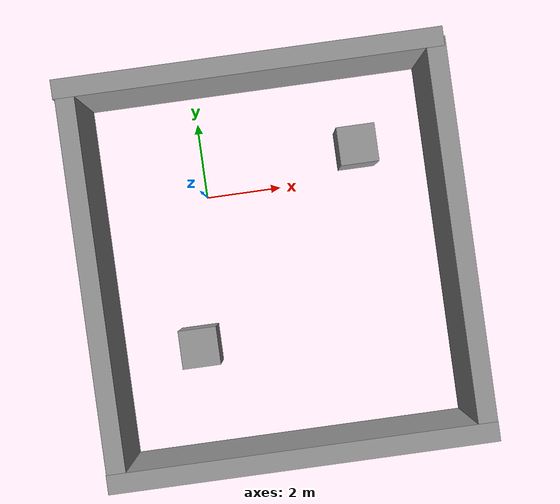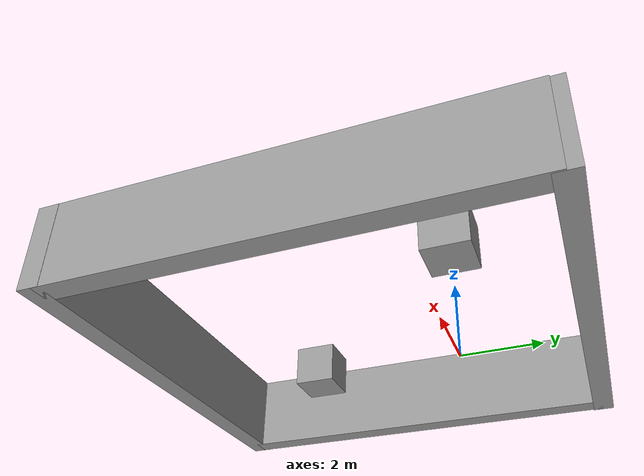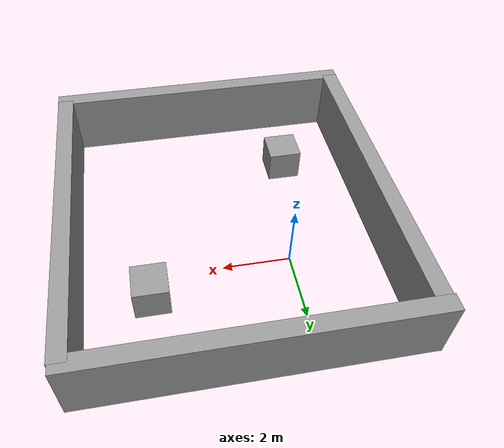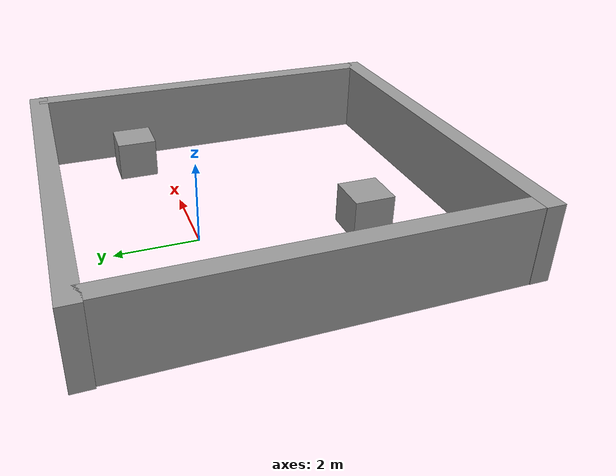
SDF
<?xml version='1.0'?>
<sdf version='1.6'>
  <model name='human_tracking_world'>
    <link name='link_0'>
      <inertial>
        <mass>1</mass>
        <inertia>
          <ixx>0.166667</ixx>
          <ixy>0</ixy>
          <ixz>0</ixz>
          <iyy>0.166667</iyy>
          <iyz>0</iyz>
          <izz>0.166667</izz>
        </inertia>
        <pose frame=''>0 0 0 0 -0 0</pose>
      </inertial>
      <pose frame=''>1.61619 -6.99267 0.5 0 -0 0</pose>
      <gravity>1</gravity>
      <self_collide>0</self_collide>
      <kinematic>0</kinematic>
      <enable_wind>0</enable_wind>
      <visual name='visual'>
        <pose frame=''>0 0 0 0 -0 0</pose>
        <geometry>
          <box>
            <size>10 0.5 2</size>
          </box>
        </geometry>
        <material>
          <lighting>1</lighting>
          <script>
            <uri>file://media/materials/scripts/gazebo.material</uri>
            <name>Gazebo/Grey</name>
          </script>
          <shader type='pixel'>
            <normal_map>__default__</normal_map>
          </shader>
          <ambient>0.3 0.3 0.3 1</ambient>
          <diffuse>0.7 0.7 0.7 1</diffuse>
          <specular>0.01 0.01 0.01 1</specular>
          <emissive>0 0 0 1</emissive>
        </material>
        <transparency>0</transparency>
        <cast_shadows>1</cast_shadows>
      </visual>
      <collision name='collision'>
        <laser_retro>0</laser_retro>
        <max_contacts>10</max_contacts>
        <pose frame=''>0 0 0 0 -0 0</pose>
        <geometry>
          <box>
            <size>10 0.5 2</size>
          </box>
        </geometry>
        <surface>
          <friction>
            <ode>
              <mu>1</mu>
              <mu2>1</mu2>
              <fdir1>0 0 0</fdir1>
              <slip1>0</slip1>
              <slip2>0</slip2>
            </ode>
            <torsional>
              <coefficient>1</coefficient>
              <patch_radius>0</patch_radius>
              <surface_radius>0</surface_radius>
              <use_patch_radius>1</use_patch_radius>
              <ode>
                <slip>0</slip>
              </ode>
            </torsional>
          </friction>
          <bounce>
            <restitution_coefficient>0</restitution_coefficient>
            <threshold>1e+06</threshold>
          </bounce>
          <contact>
            <collide_without_contact>0</collide_without_contact>
            <collide_without_contact_bitmask>1</collide_without_contact_bitmask>
            <collide_bitmask>1</collide_bitmask>
            <ode>
              <soft_cfm>0</soft_cfm>
              <soft_erp>0.2</soft_erp>
              <kp>1e+13</kp>
              <kd>1</kd>
              <max_vel>0.01</max_vel>
              <min_depth>0</min_depth>
            </ode>
            <bullet>
              <split_impulse>1</split_impulse>
              <split_impulse_penetration_threshold>-0.01</split_impulse_penetration_threshold>
              <soft_cfm>0</soft_cfm>
              <soft_erp>0.2</soft_erp>
              <kp>1e+13</kp>
              <kd>1</kd>
            </bullet>
          </contact>
        </surface>
      </collision>
    </link>
    <link name='link_0_clone'>
      <inertial>
        <mass>1</mass>
        <inertia>
          <ixx>0.166667</ixx>
          <ixy>0</ixy>
          <ixz>0</ixz>
          <iyy>0.166667</iyy>
          <iyz>0</iyz>
          <izz>0.166667</izz>
        </inertia>
        <pose frame=''>0 0 0 0 -0 0</pose>
      </inertial>
      <pose frame=''>1.5771 3.09561 0.5 0 -0 0</pose>
      <gravity>1</gravity>
      <self_collide>0</self_collide>
      <kinematic>0</kinematic>
      <enable_wind>0</enable_wind>
      <visual name='visual'>
        <pose frame=''>0 0 0 0 -0 0</pose>
        <geometry>
          <box>
            <size>10 0.5 2</size>
          </box>
        </geometry>
        <material>
          <lighting>1</lighting>
          <script>
            <uri>file://media/materials/scripts/gazebo.material</uri>
            <name>Gazebo/Grey</name>
          </script>
          <shader type='pixel'>
            <normal_map>__default__</normal_map>
          </shader>
          <ambient>0.3 0.3 0.3 1</ambient>
          <diffuse>0.7 0.7 0.7 1</diffuse>
          <specular>0.01 0.01 0.01 1</specular>
          <emissive>0 0 0 1</emissive>
        </material>
        <transparency>0</transparency>
        <cast_shadows>1</cast_shadows>
      </visual>
      <collision name='collision'>
        <laser_retro>0</laser_retro>
        <max_contacts>10</max_contacts>
        <pose frame=''>0 0 0 0 -0 0</pose>
        <geometry>
          <box>
            <size>10 0.5 2</size>
          </box>
        </geometry>
        <surface>
          <friction>
            <ode>
              <mu>1</mu>
              <mu2>1</mu2>
              <fdir1>0 0 0</fdir1>
              <slip1>0</slip1>
              <slip2>0</slip2>
            </ode>
            <torsional>
              <coefficient>1</coefficient>
              <patch_radius>0</patch_radius>
              <surface_radius>0</surface_radius>
              <use_patch_radius>1</use_patch_radius>
              <ode>
                <slip>0</slip>
              </ode>
            </torsional>
          </friction>
          <bounce>
            <restitution_coefficient>0</restitution_coefficient>
            <threshold>1e+06</threshold>
          </bounce>
          <contact>
            <collide_without_contact>0</collide_without_contact>
            <collide_without_contact_bitmask>1</collide_without_contact_bitmask>
            <collide_bitmask>1</collide_bitmask>
            <ode>
              <soft_cfm>0</soft_cfm>
              <soft_erp>0.2</soft_erp>
              <kp>1e+13</kp>
              <kd>1</kd>
              <max_vel>0.01</max_vel>
              <min_depth>0</min_depth>
            </ode>
            <bullet>
              <split_impulse>1</split_impulse>
              <split_impulse_penetration_threshold>-0.01</split_impulse_penetration_threshold>
              <soft_cfm>0</soft_cfm>
              <soft_erp>0.2</soft_erp>
              <kp>1e+13</kp>
              <kd>1</kd>
            </bullet>
          </contact>
        </surface>
      </collision>
    </link>
    <link name='link_0_clone_0'>
      <inertial>
        <mass>1</mass>
        <inertia>
          <ixx>0.166667</ixx>
          <ixy>0</ixy>
          <ixz>0</ixz>
          <iyy>0.166667</iyy>
          <iyz>0</iyz>
          <izz>0.166667</izz>
        </inertia>
        <pose frame=''>0 0 0 0 -0 0</pose>
      </inertial>
      <pose frame=''>-3.12297 -1.9238 0.5 0 -0 1.5708</pose>
      <gravity>1</gravity>
      <self_collide>0</self_collide>
      <kinematic>0</kinematic>
      <enable_wind>0</enable_wind>
      <visual name='visual'>
        <pose frame=''>0 0 0 0 -0 0</pose>
        <geometry>
          <box>
            <size>10 0.5 2</size>
          </box>
        </geometry>
        <material>
          <lighting>1</lighting>
          <script>
            <uri>file://media/materials/scripts/gazebo.material</uri>
            <name>Gazebo/Grey</name>
          </script>
          <shader type='pixel'>
            <normal_map>__default__</normal_map>
          </shader>
          <ambient>0.3 0.3 0.3 1</ambient>
          <diffuse>0.7 0.7 0.7 1</diffuse>
          <specular>0.01 0.01 0.01 1</specular>
          <emissive>0 0 0 1</emissive>
        </material>
        <transparency>0</transparency>
        <cast_shadows>1</cast_shadows>
      </visual>
      <collision name='collision'>
        <laser_retro>0</laser_retro>
        <max_contacts>10</max_contacts>
        <pose frame=''>0 0 0 0 -0 0</pose>
        <geometry>
          <box>
            <size>10 0.5 2</size>
          </box>
        </geometry>
        <surface>
          <friction>
            <ode>
              <mu>1</mu>
              <mu2>1</mu2>
              <fdir1>0 0 0</fdir1>
              <slip1>0</slip1>
              <slip2>0</slip2>
            </ode>
            <torsional>
              <coefficient>1</coefficient>
              <patch_radius>0</patch_radius>
              <surface_radius>0</surface_radius>
              <use_patch_radius>1</use_patch_radius>
              <ode>
                <slip>0</slip>
              </ode>
            </torsional>
          </friction>
          <bounce>
            <restitution_coefficient>0</restitution_coefficient>
            <threshold>1e+06</threshold>
          </bounce>
          <contact>
            <collide_without_contact>0</collide_without_contact>
            <collide_without_contact_bitmask>1</collide_without_contact_bitmask>
            <collide_bitmask>1</collide_bitmask>
            <ode>
              <soft_cfm>0</soft_cfm>
              <soft_erp>0.2</soft_erp>
              <kp>1e+13</kp>
              <kd>1</kd>
              <max_vel>0.01</max_vel>
              <min_depth>0</min_depth>
            </ode>
            <bullet>
              <split_impulse>1</split_impulse>
              <split_impulse_penetration_threshold>-0.01</split_impulse_penetration_threshold>
              <soft_cfm>0</soft_cfm>
              <soft_erp>0.2</soft_erp>
              <kp>1e+13</kp>
              <kd>1</kd>
            </bullet>
          </contact>
        </surface>
      </collision>
    </link>
    <link name='link_0_clone_1'>
      <inertial>
        <mass>1</mass>
        <inertia>
          <ixx>0.166667</ixx>
          <ixy>0</ixy>
          <ixz>0</ixz>
          <iyy>0.166667</iyy>
          <iyz>0</iyz>
          <izz>0.166667</izz>
        </inertia>
        <pose frame=''>0 0 0 0 -0 0</pose>
      </inertial>
      <pose frame=''>6.36144 -1.91838 0.5 0 -0 1.5708</pose>
      <gravity>1</gravity>
      <self_collide>0</self_collide>
      <kinematic>0</kinematic>
      <enable_wind>0</enable_wind>
      <visual name='visual'>
        <pose frame=''>0 0 0 0 -0 0</pose>
        <geometry>
          <box>
            <size>10 0.5 2</size>
          </box>
        </geometry>
        <material>
          <lighting>1</lighting>
          <script>
            <uri>file://media/materials/scripts/gazebo.material</uri>
            <name>Gazebo/Grey</name>
          </script>
          <shader type='pixel'>
            <normal_map>__default__</normal_map>
          </shader>
          <ambient>0.3 0.3 0.3 1</ambient>
          <diffuse>0.7 0.7 0.7 1</diffuse>
          <specular>0.01 0.01 0.01 1</specular>
          <emissive>0 0 0 1</emissive>
        </material>
        <transparency>0</transparency>
        <cast_shadows>1</cast_shadows>
      </visual>
      <collision name='collision'>
        <laser_retro>0</laser_retro>
        <max_contacts>10</max_contacts>
        <pose frame=''>0 0 0 0 -0 0</pose>
        <geometry>
          <box>
            <size>10 0.5 2</size>
          </box>
        </geometry>
        <surface>
          <friction>
            <ode>
              <mu>1</mu>
              <mu2>1</mu2>
              <fdir1>0 0 0</fdir1>
              <slip1>0</slip1>
              <slip2>0</slip2>
            </ode>
            <torsional>
              <coefficient>1</coefficient>
              <patch_radius>0</patch_radius>
              <surface_radius>0</surface_radius>
              <use_patch_radius>1</use_patch_radius>
              <ode>
                <slip>0</slip>
              </ode>
            </torsional>
          </friction>
          <bounce>
            <restitution_coefficient>0</restitution_coefficient>
            <threshold>1e+06</threshold>
          </bounce>
          <contact>
            <collide_without_contact>0</collide_without_contact>
            <collide_without_contact_bitmask>1</collide_without_contact_bitmask>
            <collide_bitmask>1</collide_bitmask>
            <ode>
              <soft_cfm>0</soft_cfm>
              <soft_erp>0.2</soft_erp>
              <kp>1e+13</kp>
              <kd>1</kd>
              <max_vel>0.01</max_vel>
              <min_depth>0</min_depth>
            </ode>
            <bullet>
              <split_impulse>1</split_impulse>
              <split_impulse_penetration_threshold>-0.01</split_impulse_penetration_threshold>
              <soft_cfm>0</soft_cfm>
              <soft_erp>0.2</soft_erp>
              <kp>1e+13</kp>
              <kd>1</kd>
            </bullet>
          </contact>
        </surface>
      </collision>
    </link>
    <link name='link_2'>
      <inertial>
        <mass>1</mass>
        <inertia>
          <ixx>0.166667</ixx>
          <ixy>0</ixy>
          <ixz>0</ixz>
          <iyy>0.166667</iyy>
          <iyz>0</iyz>
          <izz>0.166667</izz>
        </inertia>
        <pose frame=''>0 0 0 0 -0 0</pose>
      </inertial>
      <pose frame=''>-0.665388 -3.92636 0.5 0 -0 0</pose>
      <self_collide>0</self_collide>
      <enable_wind>0</enable_wind>
      <kinematic>0</kinematic>
      <visual name='visual'>
        <pose frame=''>0 0 0 0 -0 0</pose>
        <geometry>
          <box>
            <size>1 1 1</size>
          </box>
        </geometry>
        <material>
          <lighting>1</lighting>
          <script>
            <uri>file://media/materials/scripts/gazebo.material</uri>
            <name>Gazebo/Grey</name>
          </script>
          <shader type='pixel'/>
        </material>
        <transparency>0</transparency>
        <cast_shadows>1</cast_shadows>
      </visual>
      <collision name='collision'>
        <laser_retro>0</laser_retro>
        <max_contacts>10</max_contacts>
        <pose frame=''>0 0 0 0 -0 0</pose>
        <geometry>
          <box>
            <size>1 1 1</size>
          </box>
        </geometry>
        <surface>
          <friction>
            <ode>
              <mu>1</mu>
              <mu2>1</mu2>
              <fdir1>0 0 0</fdir1>
              <slip1>0</slip1>
              <slip2>0</slip2>
            </ode>
            <torsional>
              <coefficient>1</coefficient>
              <patch_radius>0</patch_radius>
              <surface_radius>0</surface_radius>
              <use_patch_radius>1</use_patch_radius>
              <ode>
                <slip>0</slip>
              </ode>
            </torsional>
          </friction>
          <bounce>
            <restitution_coefficient>0</restitution_coefficient>
            <threshold>1e+06</threshold>
          </bounce>
          <contact>
            <collide_without_contact>0</collide_without_contact>
            <collide_without_contact_bitmask>1</collide_without_contact_bitmask>
            <collide_bitmask>1</collide_bitmask>
            <ode>
              <soft_cfm>0</soft_cfm>
              <soft_erp>0.2</soft_erp>
              <kp>1e+13</kp>
              <kd>1</kd>
              <max_vel>0.01</max_vel>
              <min_depth>0</min_depth>
            </ode>
            <bullet>
              <split_impulse>1</split_impulse>
              <split_impulse_penetration_threshold>-0.01</split_impulse_penetration_threshold>
              <soft_cfm>0</soft_cfm>
              <soft_erp>0.2</soft_erp>
              <kp>1e+13</kp>
              <kd>1</kd>
            </bullet>
          </contact>
        </surface>
      </collision>
    </link>
    <link name='link_2_clone'>
      <inertial>
        <mass>1</mass>
        <inertia>
          <ixx>0.166667</ixx>
          <ixy>0</ixy>
          <ixz>0</ixz>
          <iyy>0.166667</iyy>
          <iyz>0</iyz>
          <izz>0.166667</izz>
        </inertia>
        <pose frame=''>0 0 0 0 -0 0</pose>
      </inertial>
      <pose frame=''>4.12341 0.750382 0.5 0 -0 0</pose>
      <self_collide>0</self_collide>
      <enable_wind>0</enable_wind>
      <kinematic>0</kinematic>
      <visual name='visual'>
        <pose frame=''>0 0 0 0 -0 0</pose>
        <geometry>
          <box>
            <size>1 1 1</size>
          </box>
        </geometry>
        <material>
          <lighting>1</lighting>
          <script>
            <uri>file://media/materials/scripts/gazebo.material</uri>
            <name>Gazebo/Grey</name>
          </script>
          <shader type='pixel'/>
        </material>
        <transparency>0</transparency>
        <cast_shadows>1</cast_shadows>
      </visual>
      <collision name='collision'>
        <laser_retro>0</laser_retro>
        <max_contacts>10</max_contacts>
        <pose frame=''>0 0 0 0 -0 0</pose>
        <geometry>
          <box>
            <size>1 1 1</size>
          </box>
        </geometry>
        <surface>
          <friction>
            <ode>
              <mu>1</mu>
              <mu2>1</mu2>
              <fdir1>0 0 0</fdir1>
              <slip1>0</slip1>
              <slip2>0</slip2>
            </ode>
            <torsional>
              <coefficient>1</coefficient>
              <patch_radius>0</patch_radius>
              <surface_radius>0</surface_radius>
              <use_patch_radius>1</use_patch_radius>
              <ode>
                <slip>0</slip>
              </ode>
            </torsional>
          </friction>
          <bounce>
            <restitution_coefficient>0</restitution_coefficient>
            <threshold>1e+06</threshold>
          </bounce>
          <contact>
            <collide_without_contact>0</collide_without_contact>
            <collide_without_contact_bitmask>1</collide_without_contact_bitmask>
            <collide_bitmask>1</collide_bitmask>
            <ode>
              <soft_cfm>0</soft_cfm>
              <soft_erp>0.2</soft_erp>
              <kp>1e+13</kp>
              <kd>1</kd>
              <max_vel>0.01</max_vel>
              <min_depth>0</min_depth>
            </ode>
            <bullet>
              <split_impulse>1</split_impulse>
              <split_impulse_penetration_threshold>-0.01</split_impulse_penetration_threshold>
              <soft_cfm>0</soft_cfm>
              <soft_erp>0.2</soft_erp>
              <kp>1e+13</kp>
              <kd>1</kd>
            </bullet>
          </contact>
        </surface>
      </collision>
    </link>
    <static>1</static>
    <allow_auto_disable>1</allow_auto_disable>
  </model>
</sdf>
